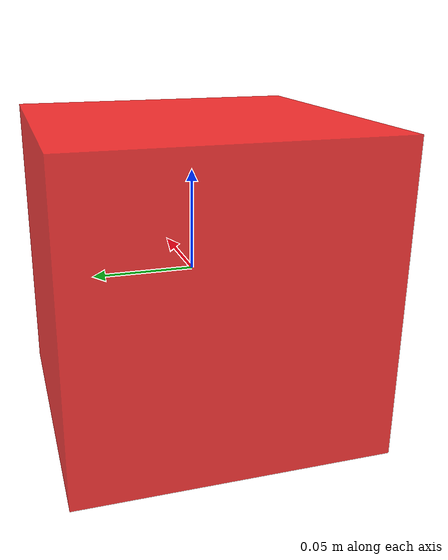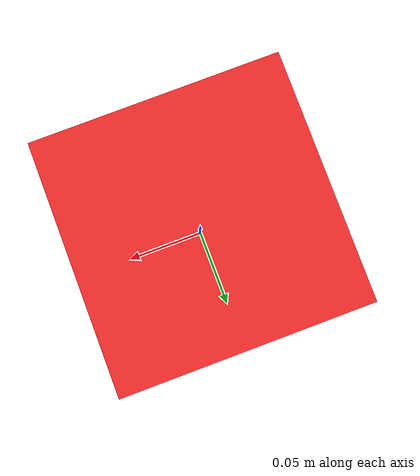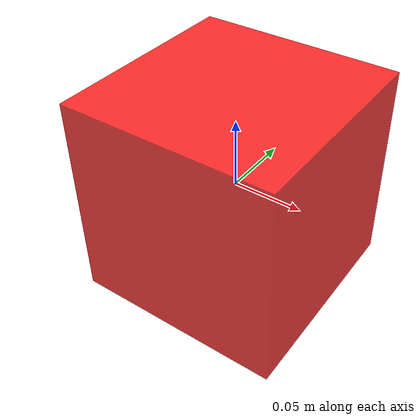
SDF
<?xml version="1.0"?>
<sdf version="1.7">
  <model name="box_15cm">
    <!-- The model for a solid box of uniform density. -->
    <link name="box">
      <inertial>
        <mass>0.55</mass>
        <inertia>
          <ixx>0.0020625</ixx>
          <ixy>0</ixy>
          <ixz>0</ixz>
          <iyy>0.0020625</iyy>
          <iyz>0</iyz>
          <izz>0.0020625</izz>
        </inertia>
      </inertial>

      <visual name="box_visual">
        <geometry>
          <box>
            <size>0.15 0.15 0.15</size>
          </box>
        </geometry>
        <material>
          <diffuse>1 0 0 0.8</diffuse>
        </material>
      </visual>

      <collision name="sphere_center">
        <pose> 0 0 0 0 0 0</pose>
        <geometry>
          <sphere>
            <radius>0.07</radius>
          </sphere>
        </geometry>
        <surface>
          <friction>
            <ode>
              <mu>0.5</mu>
              <mu2>0.5</mu2>
            </ode>
          </friction>
        </surface>
      </collision>
      <visual name="sphere_center_visual">
        <pose> 0 0 0 0 0 0</pose>
        <geometry>
          <sphere>
            <radius>0.07</radius>
          </sphere>
        </geometry>
        <material>
          <diffuse>0 1 0 0.8</diffuse>
        </material>
      </visual>

      <collision name="sphere_corner_1">
        <pose> -0.045 -0.045 -0.045 0 0 0</pose>
        <geometry>
          <sphere>
            <radius>0.03</radius>
          </sphere>
        </geometry>
        <surface>
          <friction>
            <ode>
              <mu>0.5</mu>
              <mu2>0.5</mu2>
            </ode>
          </friction>
        </surface>
      </collision>
      <visual name="sphere_corner_1_visual">
        <pose> -0.045 -0.045 -0.045 0 0 0</pose>
        <geometry>
          <sphere>
            <radius>0.03</radius>
          </sphere>
        </geometry>
        <material>
          <diffuse>0 1 0 0.8</diffuse>
        </material>
      </visual>

      <collision name="sphere_corner_2">
        <pose> 0.045 -0.045 -0.045 0 0 0</pose>
        <geometry>
          <sphere>
            <radius>0.03</radius>
          </sphere>
        </geometry>
        <surface>
          <friction>
            <ode>
              <mu>0.5</mu>
              <mu2>0.5</mu2>
            </ode>
          </friction>
        </surface>
      </collision>
      <visual name="sphere_corner_2_visual">
        <pose> 0.045 -0.045 -0.045 0 0 0</pose>
        <geometry>
          <sphere>
            <radius>0.03</radius>
          </sphere>
        </geometry>
        <material>
          <diffuse>0 1 0 0.8</diffuse>
        </material>
      </visual>

      <collision name="sphere_corner_3">
        <pose> -0.045 0.045 -0.045 0 0 0</pose>
        <geometry>
          <sphere>
            <radius>0.03</radius>
          </sphere>
        </geometry>
        <surface>
          <friction>
            <ode>
              <mu>0.5</mu>
              <mu2>0.5</mu2>
            </ode>
          </friction>
        </surface>
      </collision>
      <visual name="sphere_corner_3_visual">
        <pose> -0.045 0.045 -0.045 0 0 0</pose>
        <geometry>
          <sphere>
            <radius>0.03</radius>
          </sphere>
        </geometry>
        <material>
          <diffuse>0 1 0 0.8</diffuse>
        </material>
      </visual>

      <collision name="sphere_corner_4">
        <pose> 0.045 0.045 -0.045 0 0 0</pose>
        <geometry>
          <sphere>
            <radius>0.03</radius>
          </sphere>
        </geometry>
        <surface>
          <friction>
            <ode>
              <mu>0.5</mu>
              <mu2>0.5</mu2>
            </ode>
          </friction>
        </surface>
      </collision>
      <visual name="sphere_corner_4_visual">
        <pose> 0.045 0.045 -0.045 0 0 0</pose>
        <geometry>
          <sphere>
            <radius>0.03</radius>
          </sphere>
        </geometry>
        <material>
          <diffuse>0 1 0 0.8</diffuse>
        </material>
      </visual>

      <collision name="sphere_corner_5">
        <pose> -0.045 -0.045 0.045 0 0 0</pose>
        <geometry>
          <sphere>
            <radius>0.03</radius>
          </sphere>
        </geometry>
        <surface>
          <friction>
            <ode>
              <mu>0.5</mu>
              <mu2>0.5</mu2>
            </ode>
          </friction>
        </surface>
      </collision>
      <visual name="sphere_corner_5_visual">
        <pose> -0.045 -0.045 0.045 0 0 0</pose>
        <geometry>
          <sphere>
            <radius>0.03</radius>
          </sphere>
        </geometry>
        <material>
          <diffuse>0 1 0 0.8</diffuse>
        </material>
      </visual>

      <collision name="sphere_corner_6">
        <pose> 0.045 -0.045 0.045 0 0 0</pose>
        <geometry>
          <sphere>
            <radius>0.03</radius>
          </sphere>
        </geometry>
        <surface>
          <friction>
            <ode>
              <mu>0.5</mu>
              <mu2>0.5</mu2>
            </ode>
          </friction>
        </surface>
      </collision>
      <visual name="sphere_corner_6_visual">
        <pose> 0.045 -0.045 0.045 0 0 0</pose>
        <geometry>
          <sphere>
            <radius>0.03</radius>
          </sphere>
        </geometry>
        <material>
          <diffuse>0 1 0 0.8</diffuse>
        </material>
      </visual>

      <collision name="sphere_corner_7">
        <pose> -0.045 0.045 0.045 0 0 0</pose>
        <geometry>
          <sphere>
            <radius>0.03</radius>
          </sphere>
        </geometry>
        <surface>
          <friction>
            <ode>
              <mu>0.5</mu>
              <mu2>0.5</mu2>
            </ode>
          </friction>
        </surface>
      </collision>
      <visual name="sphere_corner_7_visual">
        <pose> -0.045 0.045 0.045 0 0 0</pose>
        <geometry>
          <sphere>
            <radius>0.03</radius>
          </sphere>
        </geometry>
        <material>
          <diffuse>0 1 0 0.8</diffuse>
        </material>
      </visual>

      <collision name="sphere_corner_8">
        <pose> 0.045 0.045 0.045 0 0 0</pose>
        <geometry>
          <sphere>
            <radius>0.03</radius>
          </sphere>
        </geometry>
        <surface>
          <friction>
            <ode>
              <mu>0.5</mu>
              <mu2>0.5</mu2>
            </ode>
          </friction>
        </surface>
      </collision>
      <visual name="sphere_corner_8_visual">
        <pose> 0.045 0.045 0.045 0 0 0</pose>
        <geometry>
          <sphere>
            <radius>0.03</radius>
          </sphere>
        </geometry>
        <material>
          <diffuse>0 1 0 0.8</diffuse>
        </material>
      </visual>

    </link>
  </model>
</sdf>
